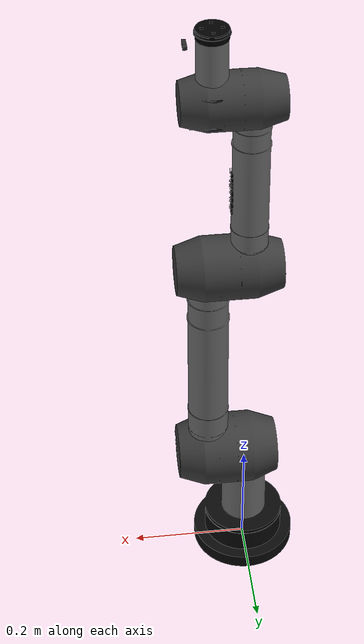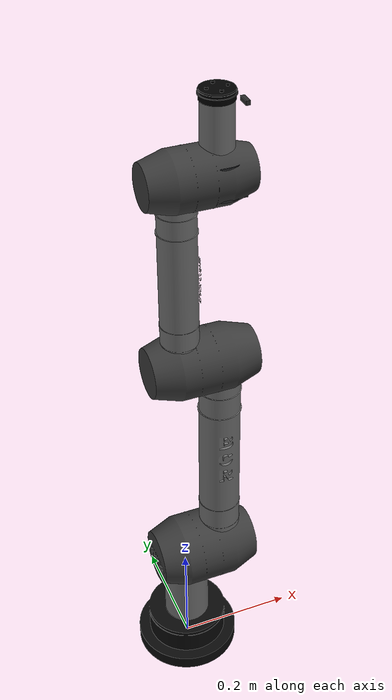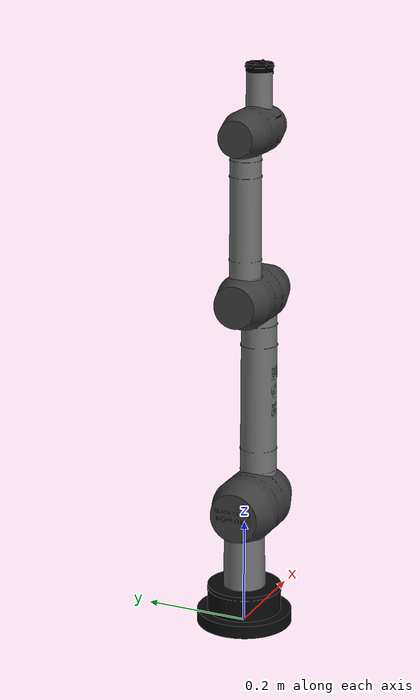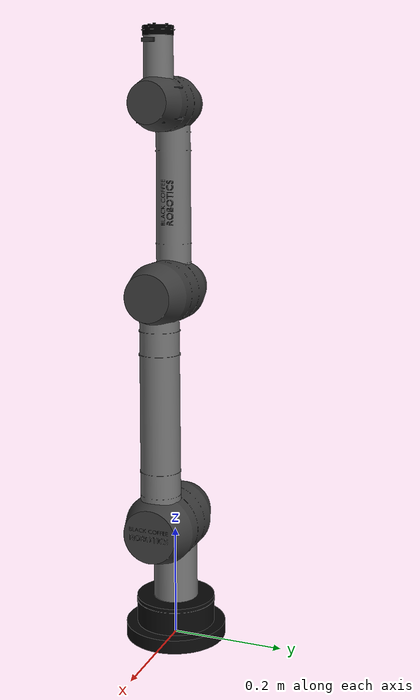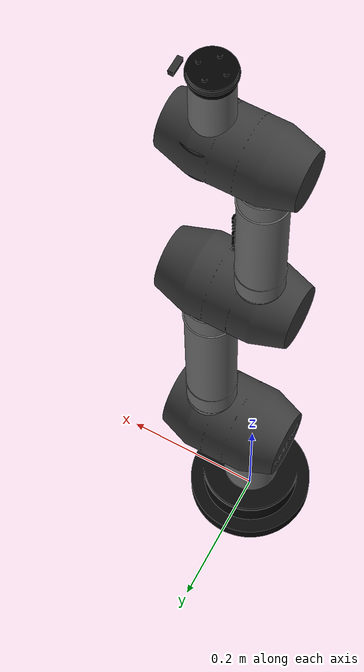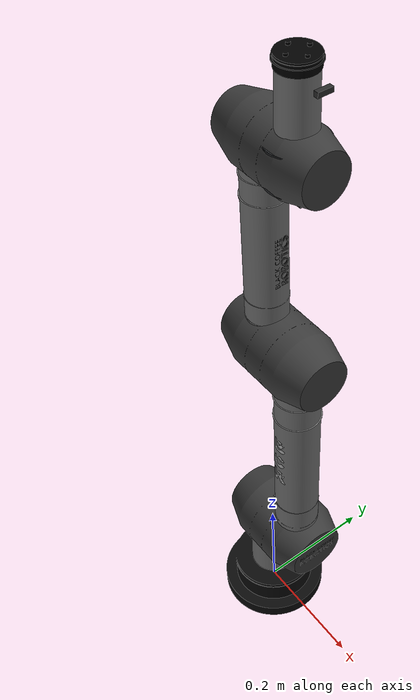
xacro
<?xml version="1.0"?>
<robot xmlns:xacro="http://www.ros.org/wiki/xacro" name="bcr_arm">

  <!-- Arguments -->
  <xacro:arg name="use_gazebo" default="true"/>
  <xacro:arg name="ros2_controllers_path" default="bcr_arm_moveit_config/config/bcr_arm/ros2_controllers.yaml"/>
  <xacro:arg name="use_camera" default="true"/>
  <xacro:arg name="prefix" default=""/>

  <!-- Material definitions for RViz -->
  <material name="black">
    <color rgba="0.165 0.165 0.165 1.0"/>
  </material>
  <material name="dark_grey">
    <color rgba="0.376 0.376 0.376 1.0"/>
  </material>
  <material name="grey">
    <color rgba="0.565 0.565 0.565 1.0"/>
  </material>

  <!-- Connect to world frame -->
  <link name="world"/>
  <joint name="world_to_base" type="fixed">
    <parent link="world"/>
    <child link="base_link"/>
    <origin xyz="0 0 0" rpy="0 0 0"/>
  </joint>

  <!-- Mechanical Arm -->
  <xacro:include filename="$(find bcr_arm_description)/urdf/mech/bcr_arm_mech.urdf.xacro"/>
  <xacro:bcr_arm_kinematics/>

  <!-- Sensors -->
  <xacro:if value="$(arg use_camera)">
    <xacro:include filename="$(find bcr_arm_description)/urdf/sensors/depth_camera.urdf.xacro"/>
    <xacro:depth_camera prefix="$(arg prefix)" parent_link="flange"/>
  </xacro:if>

  <!-- ROS2 Control -->
  <xacro:if value="$(arg use_gazebo)">
    <xacro:include filename="$(find bcr_arm_description)/urdf/control/gazebo_sim_ros2_control.urdf.xacro"/>
    <xacro:load_gazebo_sim_ros2_control_plugin robot_name="bcr_arm" ros2_controllers_path="$(arg ros2_controllers_path)" use_gazebo="$(arg use_gazebo)"/>
    <xacro:include filename="$(find bcr_arm_description)/urdf/control/ros2_control.urdf.xacro" />
    <xacro:ros2_control_interfaces/>
  </xacro:if>
</robot>

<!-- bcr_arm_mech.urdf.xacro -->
<!-- Import Python's math module for use in expressions -->
<?python import math ?>
<robot xmlns:xacro="http://www.ros.org/wiki/xacro">

  <xacro:property name="l1_len" value="0.200" />
  <xacro:property name="l2_offset" value="0.065" />
  <xacro:property name="l3_len" value="0.410" />
  <xacro:property name="l4_offset" value="-0.065" />
  <xacro:property name="l5_len" value="0.310" />
  <xacro:property name="l6_offset" value="0.060" />
  <xacro:property name="l7_len" value="0.105" />

  <!-- RViz Material Definitions -->
  <material name="color_black">
    <color rgba="0.165 0.165 0.165 1"/>
  </material>
  <material name="color_dark_grey">
    <color rgba="0.376 0.376 0.376 1"/>
  </material>
  <material name="color_grey">
    <color rgba="0.565 0.565 0.565 1"/>
  </material>
  <material name="color_light_grey">
    <color rgba="0.690 0.690 0.690 1"/>
  </material>
  <material name="color_white">
    <color rgba="0.961 0.961 0.961 1"/>
  </material>

  <xacro:macro name="bcr_arm_kinematics">

    <!-- Ignition Gazebo Material Definitions -->
    <gazebo reference="base_link">
      <material>
        <ambient>0.165 0.165 0.165 1</ambient>
        <diffuse>0.165 0.165 0.165 1</diffuse>
        <specular>0.1 0.1 0.1 1</specular>
        <emissive>0 0 0 0</emissive>
      </material>
      <mu1>0.8</mu1>
      <mu2>0.8</mu2>
    </gazebo>

    <gazebo reference="link1">
      <material>
        <ambient>0.565 0.565 0.565 1</ambient>
        <diffuse>0.565 0.565 0.565 1</diffuse>
        <specular>0.2 0.2 0.2 1</specular>
        <emissive>0 0 0 0</emissive>
      </material>
      <mu1>0.8</mu1>
      <mu2>0.8</mu2>
    </gazebo>

    <gazebo reference="link2">
      <material>
        <ambient>0.961 0.961 0.961 1</ambient>
        <diffuse>0.961 0.961 0.961 1</diffuse>
        <specular>0.3 0.3 0.3 1</specular>
        <emissive>0 0 0 0</emissive>
      </material>
      <mu1>0.8</mu1>
      <mu2>0.8</mu2>
    </gazebo>

    <gazebo reference="link3">
      <material>
        <ambient>0.565 0.565 0.565 1</ambient>
        <diffuse>0.565 0.565 0.565 1</diffuse>
        <specular>0.2 0.2 0.2 1</specular>
        <emissive>0 0 0 0</emissive>
      </material>
      <mu1>0.8</mu1>
      <mu2>0.8</mu2>
    </gazebo>

    <gazebo reference="link4">
      <material>
        <ambient>0.961 0.961 0.961 1</ambient>
        <diffuse>0.961 0.961 0.961 1</diffuse>
        <specular>0.3 0.3 0.3 1</specular>
        <emissive>0 0 0 0</emissive>
      </material>
      <mu1>0.8</mu1>
      <mu2>0.8</mu2>
    </gazebo>

    <gazebo reference="link5">
      <material>
        <ambient>0.565 0.565 0.565 1</ambient>
        <diffuse>0.565 0.565 0.565 1</diffuse>
        <specular>0.2 0.2 0.2 1</specular>
        <emissive>0 0 0 0</emissive>
      </material>
      <mu1>0.8</mu1>
      <mu2>0.8</mu2>
    </gazebo>

    <gazebo reference="link6">
      <material>
        <ambient>0.961 0.961 0.961 1</ambient>
        <diffuse>0.961 0.961 0.961 1</diffuse>
        <specular>0.3 0.3 0.3 1</specular>
        <emissive>0 0 0 0</emissive>
      </material>
      <mu1>0.8</mu1>
      <mu2>0.8</mu2>
    </gazebo>

    <gazebo reference="flange">
      <material>
        <ambient>0.376 0.376 0.376 1</ambient>
        <diffuse>0.376 0.376 0.376 1</diffuse>
        <specular>0.15 0.15 0.15 1</specular>
        <emissive>0 0 0 0</emissive>
      </material>
      <mu1>0.8</mu1>
      <mu2>0.8</mu2>
    </gazebo>

    <!-- Kinematic Chain -->
    <link name="base_link">
      <visual>
        <geometry>
          <mesh filename="package://bcr_arm_description/meshes/base_joint.dae" scale="0.001 0.001 0.001"/>
        </geometry>
      </visual>
      <collision>
        <origin xyz="0 0 0.050" rpy="0 0 0"/>
        <geometry>
          <cylinder radius="0.070" length="0.050"/>
        </geometry>
      </collision>
      <inertial>
        <mass value="2.0"/>
        <inertia ixx="0.01" ixy="0" ixz="0" iyy="0.01" iyz="0" izz="0.01"/>
      </inertial>
    </link>

    <joint name="joint1" type="revolute">
      <parent link="base_link"/>
      <child link="link1"/>
      <origin xyz="0 0 0.025" rpy="0 0 0"/>
      <axis xyz="0 0 1"/>
      <limit lower="-6.28" upper="6.28" effort="100" velocity="2"/>
    </joint>
    <link name="link1">
      <visual>
        <origin xyz="0 0 0" rpy="0 0 0"/>
        <geometry>
          <mesh filename="package://bcr_arm_description/meshes/joint_shaft_j1.dae" scale="0.001 0.001 0.001"/>
        </geometry>
      </visual>
      <visual>
        <origin xyz="0 0 0" rpy="0 0 0"/>
        <geometry>
          <mesh filename="package://bcr_arm_description/meshes/link_l1.dae" scale="0.001 0.001 0.001"/>
        </geometry>
      </visual>
      <visual>
        <origin xyz="0 0 ${l1_len}" rpy="0 0 0"/>
        <geometry>
          <mesh filename="package://bcr_arm_description/meshes/joint_housing_j2.dae" scale="0.001 0.001 0.001"/>
        </geometry>
      </visual>
      <collision>
        <origin xyz="0 0 ${l1_len/2}" rpy="0 0 0"/>
        <geometry>
          <cylinder radius="0.030" length="${l1_len*0.9}"/>
        </geometry>
      </collision>
      <inertial>
        <mass value="1.5"/>
        <inertia ixx="0.01" ixy="0" ixz="0" iyy="0.01" iyz="0" izz="0.01"/>
      </inertial>
    </link>

    <joint name="joint2" type="revolute">
      <parent link="link1"/>
      <child link="link2"/>
      <origin xyz="0 0 ${l1_len}" rpy="0 0 0"/>
      <axis xyz="1 0 0"/>
      <limit lower="-2.0" upper="2.0" effort="100" velocity="2"/>
    </joint>
    <link name="link2">
      <visual>
        <origin xyz="0 0 0" rpy="0 0 0"/>
        <geometry>
          <mesh filename="package://bcr_arm_description/meshes/joint_output_j2.dae" scale="0.001 0.001 0.001"/>
        </geometry>
      </visual>
      <visual>
        <origin xyz="${l2_offset} 0 0" rpy="0 0 0"/>
        <geometry>
          <mesh filename="package://bcr_arm_description/meshes/joint_housing_j3.dae" scale="0.001 0.001 0.001"/>
        </geometry>
      </visual>
      <collision>
        <origin xyz="${l2_offset/2} 0 0" rpy="0 ${pi/2} 0"/>
        <geometry>
          <cylinder radius="0.030" length="${math.fabs(l2_offset)*1.5}"/>
        </geometry>
      </collision>
      <inertial>
        <mass value="1.5"/>
        <inertia ixx="0.01" ixy="0" ixz="0" iyy="0.01" iyz="0" izz="0.01"/>
      </inertial>
    </link>

    <joint name="joint3" type="revolute">
      <parent link="link2"/>
      <child link="link3"/>
      <origin xyz="${l2_offset} 0 0" rpy="0 0 0"/>
      <axis xyz="0 0 1"/>
      <limit lower="-6.28" upper="6.28" effort="100" velocity="2"/>
    </joint>
    <link name="link3">
      <visual>
        <origin xyz="0 0 0" rpy="0 0 0"/>
        <geometry>
          <mesh filename="package://bcr_arm_description/meshes/joint_shaft_j3.dae" scale="0.001 0.001 0.001"/>
        </geometry>
      </visual>
      <visual>
        <origin xyz="0 0 0" rpy="0 0 0"/>
        <geometry>
          <mesh filename="package://bcr_arm_description/meshes/link_l2.dae" scale="0.001 0.001 0.001"/>
        </geometry>
      </visual>
      <visual>
        <origin xyz="0 0 ${l3_len}" rpy="0 0 0"/>
        <geometry>
          <mesh filename="package://bcr_arm_description/meshes/joint_housing_j4.dae" scale="0.001 0.001 0.001"/>
        </geometry>
      </visual>
      <collision>
        <origin xyz="0 0 ${l3_len/2}" rpy="0 0 0"/>
        <geometry>
          <cylinder radius="0.030" length="${l3_len*0.95}"/>
        </geometry>
      </collision>
      <inertial>
        <mass value="1.2"/>
        <inertia ixx="0.01" ixy="0" ixz="0" iyy="0.01" iyz="0" izz="0.01"/>
      </inertial>
    </link>

    <joint name="joint4" type="revolute">
      <parent link="link3"/>
      <child link="link4"/>
      <origin xyz="0 0 ${l3_len}" rpy="0 0 0"/>
      <axis xyz="1 0 0"/>
      <limit lower="-2.0" upper="2.0" effort="80" velocity="2"/>
    </joint>
    <link name="link4">
      <visual>
        <origin xyz="0 0 0" rpy="0 0 0"/>
        <geometry>
          <mesh filename="package://bcr_arm_description/meshes/joint_output_j4.dae" scale="0.001 0.001 0.001"/>
        </geometry>
      </visual>
      <visual>
        <origin xyz="${l4_offset} 0 0" rpy="0 0 0"/>
        <geometry>
          <mesh filename="package://bcr_arm_description/meshes/joint_housing_j5.dae" scale="0.001 0.001 0.001"/>
        </geometry>
      </visual>
      <collision>
        <origin xyz="${l4_offset/2} 0 0" rpy="0 ${pi/2} 0"/>
        <geometry>
          <cylinder radius="0.030" length="${math.fabs(l4_offset)*1.5}"/>
        </geometry>
      </collision>
      <inertial>
        <mass value="1.0"/>
        <inertia ixx="0.01" ixy="0" ixz="0" iyy="0.01" iyz="0" izz="0.01"/>
      </inertial>
    </link>

    <joint name="joint5" type="revolute">
      <parent link="link4"/>
      <child link="link5"/>
      <origin xyz="${l4_offset} 0 0" rpy="0 0 0"/>
      <axis xyz="0 0 1"/>
      <limit lower="-6.28" upper="6.28" effort="50" velocity="3"/>
    </joint>
    <link name="link5">
      <visual>
        <origin xyz="0 0 0" rpy="0 0 0"/>
        <geometry>
          <mesh filename="package://bcr_arm_description/meshes/joint_shaft_j5.dae" scale="0.001 0.001 0.001"/>
        </geometry>
      </visual>
      <visual>
        <origin xyz="0 0 0" rpy="0 0 0"/>
        <geometry>
          <mesh filename="package://bcr_arm_description/meshes/link_l3.dae" scale="0.001 0.001 0.001"/>
        </geometry>
      </visual>
      <visual>
        <origin xyz="0 0 ${l5_len}" rpy="0 0 0"/>
        <geometry>
          <mesh filename="package://bcr_arm_description/meshes/joint_housing_j6.dae" scale="0.001 0.001 0.001"/>
        </geometry>
      </visual>
      <collision>
        <origin xyz="0 0 ${l5_len/2}" rpy="0 0 0"/>
        <geometry>
          <cylinder radius="0.025" length="${l5_len*0.95}"/>
        </geometry>
      </collision>
      <inertial>
        <mass value="0.8"/>
        <inertia ixx="0.01" ixy="0" ixz="0" iyy="0.01" iyz="0" izz="0.01"/>
      </inertial>
    </link>

    <joint name="joint6" type="revolute">
      <parent link="link5"/>
      <child link="link6"/>
      <origin xyz="0 0 ${l5_len}" rpy="0 0 0"/>
      <axis xyz="1 0 0"/>
      <limit lower="-2.0" upper="2.0" effort="50" velocity="3"/>
    </joint>
    <link name="link6">
      <visual>
        <origin xyz="0 0 0" rpy="0 0 0"/>
        <geometry>
          <mesh filename="package://bcr_arm_description/meshes/joint_output_j6.dae" scale="0.001 0.001 0.001"/>
        </geometry>
      </visual>
      <visual>
        <origin xyz="${l6_offset} 0 0" rpy="0 0 0"/>
        <geometry>
          <mesh filename="package://bcr_arm_description/meshes/joint_housing_j7.dae" scale="0.001 0.001 0.001"/>
        </geometry>
      </visual>
      <collision>
        <origin xyz="${l6_offset/2} 0 0" rpy="0 ${pi/2} 0"/>
        <geometry>
          <cylinder radius="0.030" length="${math.fabs(l6_offset)*1.5}"/>
        </geometry>
      </collision>
      <inertial>
        <mass value="0.5"/>
        <inertia ixx="0.01" ixy="0" ixz="0" iyy="0.01" iyz="0" izz="0.01"/>
      </inertial>
    </link>

    <joint name="joint7" type="revolute">
      <parent link="link6"/>
      <child link="flange"/>
      <origin xyz="${l6_offset} 0 0" rpy="0 0 0"/>
      <axis xyz="0 0 1"/>
      <limit lower="-6.28" upper="6.28" effort="30" velocity="4"/>
    </joint>
    <link name="flange">
      <visual>
        <origin xyz="0 0 0" rpy="0 0 0"/>
        <geometry>
          <mesh filename="package://bcr_arm_description/meshes/joint_shaft_j7.dae" scale="0.001 0.001 0.001"/>
        </geometry>
      </visual>
      <visual>
        <origin xyz="0 0 0" rpy="0 0 0"/>
        <geometry>
          <mesh filename="package://bcr_arm_description/meshes/link_l4.dae" scale="0.001 0.001 0.001"/>
        </geometry>
      </visual>
      <visual>
        <origin xyz="0 0 ${l7_len}" rpy="0 0 0"/>
        <geometry>
          <mesh filename="package://bcr_arm_description/meshes/tool_flange.dae" scale="0.001 0.001 0.001"/>
        </geometry>
      </visual>
      <collision>
        <origin xyz="0 0 ${l7_len/2}" rpy="0 0 0"/>
        <geometry>
          <cylinder radius="0.025" length="${l7_len*0.9}"/>
        </geometry>
      </collision>
      <inertial>
        <mass value="0.3"/>
        <inertia ixx="0.01" ixy="0" ixz="0" iyy="0.01" iyz="0" izz="0.01"/>
      </inertial>
    </link>
  </xacro:macro>
</robot>

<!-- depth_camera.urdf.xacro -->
<robot xmlns:xacro="http://www.ros.org/wiki/xacro">

  <xacro:macro name="depth_camera" params="prefix parent_link namespace:=bcr_arm">

    <!-- Camera Mount and Link -->
    <joint name="${prefix}camera_mount_joint" type="fixed">
      <parent link="${parent_link}"/>
      <child link="${prefix}camera_base_link"/>
      <origin xyz="0.04 0 0.096125" rpy="0 0 0"/>
    </joint>

    <link name="${prefix}camera_base_link">
       <visual>
        <geometry>
          <box size="0.00625 0.02 0.00625"/>
        </geometry>
        <material name="black"/>
      </visual>
      <collision>
        <geometry>
          <box size="0.00625 0.02 0.00625"/>
        </geometry>
      </collision>
      <inertial>
        <mass value="0.05"/>
        <inertia ixx="1e-6" ixy="0" ixz="0" iyy="1e-6" iyz="0" izz="1e-6"/>
      </inertial>
    </link>

    <!-- Camera Sensor Link -->
    <joint name="${prefix}camera_joint" type="fixed">
      <parent link="${prefix}camera_base_link"/>
      <child link="${prefix}camera_link"/>
      <!-- Pointing forward from the mount -->
      <origin xyz="0.0125 0 0" rpy="0 0 0"/>
    </joint>

    <link name="${prefix}camera_link"/>

    <!-- Camera Optical Frame -->
    <joint name="${prefix}camera_optical_joint" type="fixed">
      <parent link="${prefix}camera_link"/>
      <child link="${prefix}camera_depth_optical_frame"/>
      <!-- Standard ROS optical frame rotation -->
      <origin xyz="0 0 0" rpy="${-pi/2} 0 ${-pi/2}"/>
    </joint>

    <link name="${prefix}camera_depth_optical_frame"/>

    <!-- Ignition Gazebo Camera Plugin -->
    <gazebo reference="${prefix}camera_link">
      <sensor type="camera" name="depth_camera">
        <always_on>true</always_on>
        <update_rate>20</update_rate>
        <visualize>true</visualize>
        <camera>
          <horizontal_fov>1.0</horizontal_fov>
          <image>
            <width>640</width>
            <height>480</height>
            <format>R8G8B8</format>
          </image>
          <depth_image>
            <width>640</width>
            <height>480</height>
          </depth_image>
          <clip>
            <near>0.1</near>
            <far>10.0</far>
          </clip>
        </camera>
        <!-- Sensor data handled by Gazebo sensors system and bridged by ros_gz_bridge -->
      </sensor>
    </gazebo>
  </xacro:macro>
</robot>
